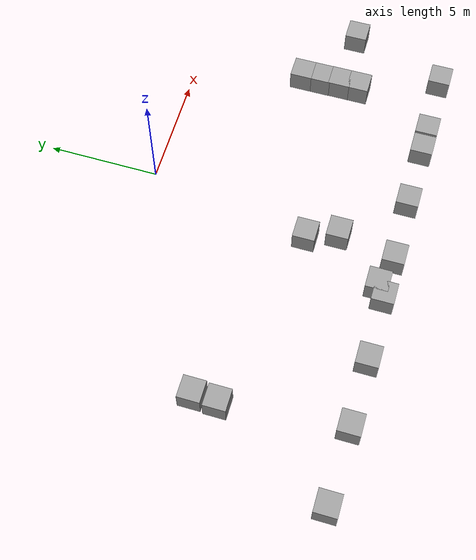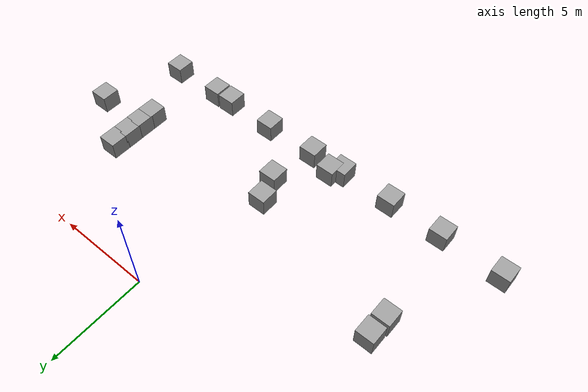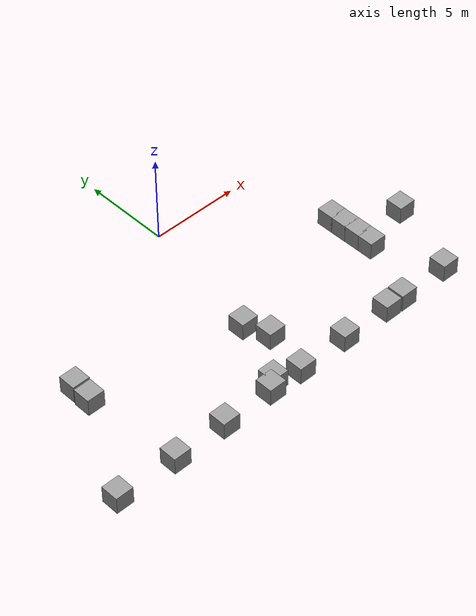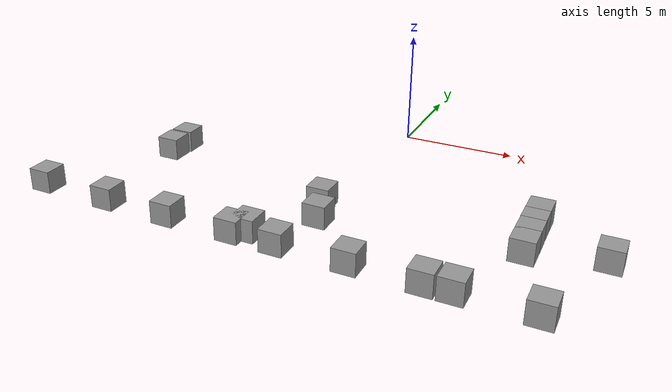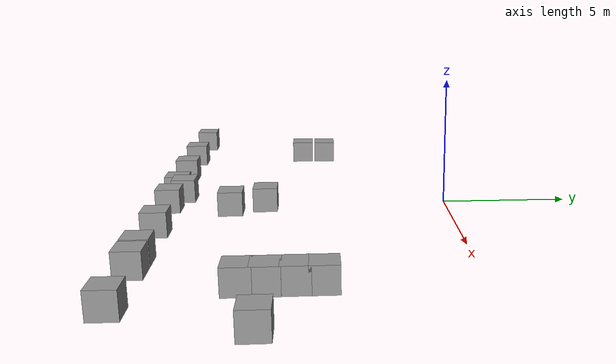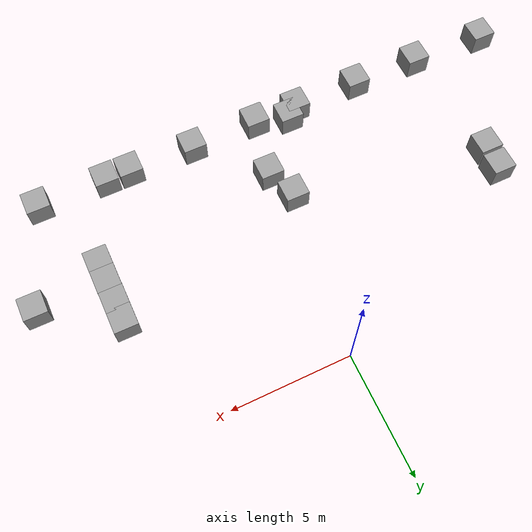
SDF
<sdf version="1.7">
 <model name="21">
  <link name="link_20">
   <inertial>
    <mass>1</mass>
    <inertia>
     <ixx>0.166667</ixx>
     <ixy>0</ixy>
     <ixz>0</ixz>
     <iyy>0.166667</iyy>
     <iyz>0</iyz>
     <izz>0.166667</izz>
    </inertia>
   </inertial>
   <pose>-9.6054 -4.79794 0 0 -0 0</pose>
   <visual name="visual">
    <geometry><box><size>1 1 1</size></box></geometry>
    <material>
     <lighting>1</lighting>
     <script><uri>file://media/materials/scripts/gazebo.material</uri><name>Gazebo/Grey</name></script>
     <shader type="pixel"/>
    </material>
   </visual>
   <collision name="collision">
    <geometry><box><size>1 1 1</size></box></geometry>
    <surface>
     <friction>
      <ode><mu>1</mu><mu2>1</mu2><fdir1>0 0 0</fdir1><slip1>0</slip1><slip2>0</slip2></ode>
      <torsional>
       <coefficient>1</coefficient>
       <patch_radius>0</patch_radius>
       <surface_radius>0</surface_radius>
       <use_patch_radius>1</use_patch_radius>
       <ode><slip>0</slip></ode>
      </torsional>
     </friction>
     <bounce><restitution_coefficient>0</restitution_coefficient><threshold>1e+06</threshold></bounce>
     <contact>
      <collide_without_contact>0</collide_without_contact>
      <collide_without_contact_bitmask>1</collide_without_contact_bitmask>
      <collide_bitmask>1</collide_bitmask>
      <ode>
       <soft_cfm>0</soft_cfm>
       <soft_erp>0.2</soft_erp>
       <kp>1e+13</kp>
       <kd>1</kd>
       <max_vel>0.01</max_vel>
       <min_depth>0</min_depth>
      </ode>
      <bullet>
       <split_impulse>1</split_impulse>
       <split_impulse_penetration_threshold>-0.01</split_impulse_penetration_threshold>
       <soft_cfm>0</soft_cfm>
       <soft_erp>0.2</soft_erp>
       <kp>1e+13</kp>
       <kd>1</kd>
      </bullet>
     </contact>
    </surface>
   </collision>
  </link>
  <link name="link_21">
   <inertial>
    <mass>1</mass>
    <inertia>
     <ixx>0.166667</ixx>
     <ixy>0</ixy>
     <ixz>0</ixz>
     <iyy>0.166667</iyy>
     <iyz>0</iyz>
     <izz>0.166667</izz>
    </inertia>
   </inertial>
   <pose>-9.65502 -5.90562 0 0 -0 0</pose>
   <visual name="visual">
    <geometry><box><size>1 1 1</size></box></geometry>
    <material>
     <lighting>1</lighting>
     <script><uri>file://media/materials/scripts/gazebo.material</uri><name>Gazebo/Grey</name></script>
     <shader type="pixel"/>
    </material>
   </visual>
   <collision name="collision">
    <geometry><box><size>1 1 1</size></box></geometry>
    <surface>
     <friction>
      <ode><mu>1</mu><mu2>1</mu2><fdir1>0 0 0</fdir1><slip1>0</slip1><slip2>0</slip2></ode>
      <torsional>
       <coefficient>1</coefficient>
       <patch_radius>0</patch_radius>
       <surface_radius>0</surface_radius>
       <use_patch_radius>1</use_patch_radius>
       <ode><slip>0</slip></ode>
      </torsional>
     </friction>
     <bounce><restitution_coefficient>0</restitution_coefficient><threshold>1e+06</threshold></bounce>
     <contact>
      <collide_without_contact>0</collide_without_contact>
      <collide_without_contact_bitmask>1</collide_without_contact_bitmask>
      <collide_bitmask>1</collide_bitmask>
      <ode>
       <soft_cfm>0</soft_cfm>
       <soft_erp>0.2</soft_erp>
       <kp>1e+13</kp>
       <kd>1</kd>
       <max_vel>0.01</max_vel>
       <min_depth>0</min_depth>
      </ode>
      <bullet>
       <split_impulse>1</split_impulse>
       <split_impulse_penetration_threshold>-0.01</split_impulse_penetration_threshold>
       <soft_cfm>0</soft_cfm>
       <soft_erp>0.2</soft_erp>
       <kp>1e+13</kp>
       <kd>1</kd>
      </bullet>
     </contact>
    </surface>
   </collision>
  </link>
  <link name="link_22">
   <inertial>
    <mass>1</mass>
    <inertia>
     <ixx>0.166667</ixx>
     <ixy>0</ixy>
     <ixz>0</ixz>
     <iyy>0.166667</iyy>
     <iyz>0</iyz>
     <izz>0.166667</izz>
    </inertia>
   </inertial>
   <pose>-12.5644 -11.2451 0 0 -0 0</pose>
   <visual name="visual">
    <geometry><box><size>1 1 1</size></box></geometry>
    <material>
     <lighting>1</lighting>
     <script><uri>file://media/materials/scripts/gazebo.material</uri><name>Gazebo/Grey</name></script>
     <shader type="pixel"/>
    </material>
   </visual>
   <collision name="collision">
    <geometry><box><size>1 1 1</size></box></geometry>
    <surface>
     <friction>
      <ode><mu>1</mu><mu2>1</mu2><fdir1>0 0 0</fdir1><slip1>0</slip1><slip2>0</slip2></ode>
      <torsional>
       <coefficient>1</coefficient>
       <patch_radius>0</patch_radius>
       <surface_radius>0</surface_radius>
       <use_patch_radius>1</use_patch_radius>
       <ode><slip>0</slip></ode>
      </torsional>
     </friction>
     <bounce><restitution_coefficient>0</restitution_coefficient><threshold>1e+06</threshold></bounce>
     <contact>
      <collide_without_contact>0</collide_without_contact>
      <collide_without_contact_bitmask>1</collide_without_contact_bitmask>
      <collide_bitmask>1</collide_bitmask>
      <ode>
       <soft_cfm>0</soft_cfm>
       <soft_erp>0.2</soft_erp>
       <kp>1e+13</kp>
       <kd>1</kd>
       <max_vel>0.01</max_vel>
       <min_depth>0</min_depth>
      </ode>
      <bullet>
       <split_impulse>1</split_impulse>
       <split_impulse_penetration_threshold>-0.01</split_impulse_penetration_threshold>
       <soft_cfm>0</soft_cfm>
       <soft_erp>0.2</soft_erp>
       <kp>1e+13</kp>
       <kd>1</kd>
      </bullet>
     </contact>
    </surface>
   </collision>
  </link>
  <link name="link_24">
   <inertial>
    <mass>1</mass>
    <inertia>
     <ixx>0.166667</ixx>
     <ixy>0</ixy>
     <ixz>0</ixz>
     <iyy>0.166667</iyy>
     <iyz>0</iyz>
     <izz>0.166667</izz>
    </inertia>
   </inertial>
   <pose>-6.11914 -11.3527 0 0 -0 0</pose>
   <visual name="visual">
    <geometry><box><size>1 1 1</size></box></geometry>
    <material>
     <lighting>1</lighting>
     <script><uri>file://media/materials/scripts/gazebo.material</uri><name>Gazebo/Grey</name></script>
     <shader type="pixel"/>
    </material>
   </visual>
   <collision name="collision">
    <geometry><box><size>1 1 1</size></box></geometry>
    <surface>
     <friction>
      <ode><mu>1</mu><mu2>1</mu2><fdir1>0 0 0</fdir1><slip1>0</slip1><slip2>0</slip2></ode>
      <torsional>
       <coefficient>1</coefficient>
       <patch_radius>0</patch_radius>
       <surface_radius>0</surface_radius>
       <use_patch_radius>1</use_patch_radius>
       <ode><slip>0</slip></ode>
      </torsional>
     </friction>
     <bounce><restitution_coefficient>0</restitution_coefficient><threshold>1e+06</threshold></bounce>
     <contact>
      <collide_without_contact>0</collide_without_contact>
      <collide_without_contact_bitmask>1</collide_without_contact_bitmask>
      <collide_bitmask>1</collide_bitmask>
      <ode>
       <soft_cfm>0</soft_cfm>
       <soft_erp>0.2</soft_erp>
       <kp>1e+13</kp>
       <kd>1</kd>
       <max_vel>0.01</max_vel>
       <min_depth>0</min_depth>
      </ode>
      <bullet>
       <split_impulse>1</split_impulse>
       <split_impulse_penetration_threshold>-0.01</split_impulse_penetration_threshold>
       <soft_cfm>0</soft_cfm>
       <soft_erp>0.2</soft_erp>
       <kp>1e+13</kp>
       <kd>1</kd>
      </bullet>
     </contact>
    </surface>
   </collision>
  </link>
  <link name="link_25">
   <inertial>
    <mass>1</mass>
    <inertia>
     <ixx>0.166667</ixx>
     <ixy>0</ixy>
     <ixz>0</ixz>
     <iyy>0.166667</iyy>
     <iyz>0</iyz>
     <izz>0.166667</izz>
    </inertia>
   </inertial>
   <pose>-9.16095 -11.3362 0 0 -0 0</pose>
   <visual name="visual">
    <geometry><box><size>1 1 1</size></box></geometry>
    <material>
     <lighting>1</lighting>
     <script><uri>file://media/materials/scripts/gazebo.material</uri><name>Gazebo/Grey</name></script>
     <shader type="pixel"/>
    </material>
   </visual>
   <collision name="collision">
    <geometry><box><size>1 1 1</size></box></geometry>
    <surface>
     <friction>
      <ode><mu>1</mu><mu2>1</mu2><fdir1>0 0 0</fdir1><slip1>0</slip1><slip2>0</slip2></ode>
      <torsional>
       <coefficient>1</coefficient>
       <patch_radius>0</patch_radius>
       <surface_radius>0</surface_radius>
       <use_patch_radius>1</use_patch_radius>
       <ode><slip>0</slip></ode>
      </torsional>
     </friction>
     <bounce><restitution_coefficient>0</restitution_coefficient><threshold>1e+06</threshold></bounce>
     <contact>
      <collide_without_contact>0</collide_without_contact>
      <collide_without_contact_bitmask>1</collide_without_contact_bitmask>
      <collide_bitmask>1</collide_bitmask>
      <ode>
       <soft_cfm>0</soft_cfm>
       <soft_erp>0.2</soft_erp>
       <kp>1e+13</kp>
       <kd>1</kd>
       <max_vel>0.01</max_vel>
       <min_depth>0</min_depth>
      </ode>
      <bullet>
       <split_impulse>1</split_impulse>
       <split_impulse_penetration_threshold>-0.01</split_impulse_penetration_threshold>
       <soft_cfm>0</soft_cfm>
       <soft_erp>0.2</soft_erp>
       <kp>1e+13</kp>
       <kd>1</kd>
      </bullet>
     </contact>
    </surface>
   </collision>
  </link>
  <link name="link_26">
   <inertial>
    <mass>1</mass>
    <inertia>
     <ixx>0.166667</ixx>
     <ixy>0</ixy>
     <ixz>0</ixz>
     <iyy>0.166667</iyy>
     <iyz>0</iyz>
     <izz>0.166667</izz>
    </inertia>
   </inertial>
   <pose>-1.11812 -7.33722 0 0 -0 0</pose>
   <visual name="visual">
    <geometry><box><size>1 1 1</size></box></geometry>
    <material>
     <lighting>1</lighting>
     <script><uri>file://media/materials/scripts/gazebo.material</uri><name>Gazebo/Grey</name></script>
     <shader type="pixel"/>
    </material>
   </visual>
   <collision name="collision">
    <geometry><box><size>1 1 1</size></box></geometry>
    <surface>
     <friction>
      <ode><mu>1</mu><mu2>1</mu2><fdir1>0 0 0</fdir1><slip1>0</slip1><slip2>0</slip2></ode>
      <torsional>
       <coefficient>1</coefficient>
       <patch_radius>0</patch_radius>
       <surface_radius>0</surface_radius>
       <use_patch_radius>1</use_patch_radius>
       <ode><slip>0</slip></ode>
      </torsional>
     </friction>
     <bounce><restitution_coefficient>0</restitution_coefficient><threshold>1e+06</threshold></bounce>
     <contact>
      <collide_without_contact>0</collide_without_contact>
      <collide_without_contact_bitmask>1</collide_without_contact_bitmask>
      <collide_bitmask>1</collide_bitmask>
      <ode>
       <soft_cfm>0</soft_cfm>
       <soft_erp>0.2</soft_erp>
       <kp>1e+13</kp>
       <kd>1</kd>
       <max_vel>0.01</max_vel>
       <min_depth>0</min_depth>
      </ode>
      <bullet>
       <split_impulse>1</split_impulse>
       <split_impulse_penetration_threshold>-0.01</split_impulse_penetration_threshold>
       <soft_cfm>0</soft_cfm>
       <soft_erp>0.2</soft_erp>
       <kp>1e+13</kp>
       <kd>1</kd>
      </bullet>
     </contact>
    </surface>
   </collision>
  </link>
  <link name="link_27">
   <inertial>
    <mass>1</mass>
    <inertia>
     <ixx>0.166667</ixx>
     <ixy>0</ixy>
     <ixz>0</ixz>
     <iyy>0.166667</iyy>
     <iyz>0</iyz>
     <izz>0.166667</izz>
    </inertia>
   </inertial>
   <pose>-0.622145 -8.72573 0 0 -0 0</pose>
   <visual name="visual">
    <geometry><box><size>1 1 1</size></box></geometry>
    <material>
     <lighting>1</lighting>
     <script><uri>file://media/materials/scripts/gazebo.material</uri><name>Gazebo/Grey</name></script>
     <shader type="pixel"/>
    </material>
   </visual>
   <collision name="collision">
    <geometry><box><size>1 1 1</size></box></geometry>
    <surface>
     <friction>
      <ode><mu>1</mu><mu2>1</mu2><fdir1>0 0 0</fdir1><slip1>0</slip1><slip2>0</slip2></ode>
      <torsional>
       <coefficient>1</coefficient>
       <patch_radius>0</patch_radius>
       <surface_radius>0</surface_radius>
       <use_patch_radius>1</use_patch_radius>
       <ode><slip>0</slip></ode>
      </torsional>
     </friction>
     <bounce><restitution_coefficient>0</restitution_coefficient><threshold>1e+06</threshold></bounce>
     <contact>
      <collide_without_contact>0</collide_without_contact>
      <collide_without_contact_bitmask>1</collide_without_contact_bitmask>
      <collide_bitmask>1</collide_bitmask>
      <ode>
       <soft_cfm>0</soft_cfm>
       <soft_erp>0.2</soft_erp>
       <kp>1e+13</kp>
       <kd>1</kd>
       <max_vel>0.01</max_vel>
       <min_depth>0</min_depth>
      </ode>
      <bullet>
       <split_impulse>1</split_impulse>
       <split_impulse_penetration_threshold>-0.01</split_impulse_penetration_threshold>
       <soft_cfm>0</soft_cfm>
       <soft_erp>0.2</soft_erp>
       <kp>1e+13</kp>
       <kd>1</kd>
      </bullet>
     </contact>
    </surface>
   </collision>
  </link>
  <link name="link_28">
   <inertial>
    <mass>1</mass>
    <inertia>
     <ixx>0.166667</ixx>
     <ixy>0</ixy>
     <ixz>0</ixz>
     <iyy>0.166667</iyy>
     <iyz>0</iyz>
     <izz>0.166667</izz>
    </inertia>
   </inertial>
   <pose>-3.11836 -11.3212 0 0 -0 0</pose>
   <visual name="visual">
    <geometry><box><size>1 1 1</size></box></geometry>
    <material>
     <lighting>1</lighting>
     <script><uri>file://media/materials/scripts/gazebo.material</uri><name>Gazebo/Grey</name></script>
     <shader type="pixel"/>
    </material>
   </visual>
   <collision name="collision">
    <geometry><box><size>1 1 1</size></box></geometry>
    <surface>
     <friction>
      <ode><mu>1</mu><mu2>1</mu2><fdir1>0 0 0</fdir1><slip1>0</slip1><slip2>0</slip2></ode>
      <torsional>
       <coefficient>1</coefficient>
       <patch_radius>0</patch_radius>
       <surface_radius>0</surface_radius>
       <use_patch_radius>1</use_patch_radius>
       <ode><slip>0</slip></ode>
      </torsional>
     </friction>
     <bounce><restitution_coefficient>0</restitution_coefficient><threshold>1e+06</threshold></bounce>
     <contact>
      <collide_without_contact>0</collide_without_contact>
      <collide_without_contact_bitmask>1</collide_without_contact_bitmask>
      <collide_bitmask>1</collide_bitmask>
      <ode>
       <soft_cfm>0</soft_cfm>
       <soft_erp>0.2</soft_erp>
       <kp>1e+13</kp>
       <kd>1</kd>
       <max_vel>0.01</max_vel>
       <min_depth>0</min_depth>
      </ode>
      <bullet>
       <split_impulse>1</split_impulse>
       <split_impulse_penetration_threshold>-0.01</split_impulse_penetration_threshold>
       <soft_cfm>0</soft_cfm>
       <soft_erp>0.2</soft_erp>
       <kp>1e+13</kp>
       <kd>1</kd>
      </bullet>
     </contact>
    </surface>
   </collision>
  </link>
  <link name="link_29">
   <inertial>
    <mass>1</mass>
    <inertia>
     <ixx>0.166667</ixx>
     <ixy>0</ixy>
     <ixz>0</ixz>
     <iyy>0.166667</iyy>
     <iyz>0</iyz>
     <izz>0.166667</izz>
    </inertia>
   </inertial>
   <pose>-2.6059 -10.9411 0 0 -0 0</pose>
   <visual name="visual">
    <geometry><box><size>1 1 1</size></box></geometry>
    <material>
     <lighting>1</lighting>
     <script><uri>file://media/materials/scripts/gazebo.material</uri><name>Gazebo/Grey</name></script>
     <shader type="pixel"/>
    </material>
   </visual>
   <collision name="collision">
    <geometry><box><size>1 1 1</size></box></geometry>
    <surface>
     <friction>
      <ode><mu>1</mu><mu2>1</mu2><fdir1>0 0 0</fdir1><slip1>0</slip1><slip2>0</slip2></ode>
      <torsional>
       <coefficient>1</coefficient>
       <patch_radius>0</patch_radius>
       <surface_radius>0</surface_radius>
       <use_patch_radius>1</use_patch_radius>
       <ode><slip>0</slip></ode>
      </torsional>
     </friction>
     <bounce><restitution_coefficient>0</restitution_coefficient><threshold>1e+06</threshold></bounce>
     <contact>
      <collide_without_contact>0</collide_without_contact>
      <collide_without_contact_bitmask>1</collide_without_contact_bitmask>
      <collide_bitmask>1</collide_bitmask>
      <ode>
       <soft_cfm>0</soft_cfm>
       <soft_erp>0.2</soft_erp>
       <kp>1e+13</kp>
       <kd>1</kd>
       <max_vel>0.01</max_vel>
       <min_depth>0</min_depth>
      </ode>
      <bullet>
       <split_impulse>1</split_impulse>
       <split_impulse_penetration_threshold>-0.01</split_impulse_penetration_threshold>
       <soft_cfm>0</soft_cfm>
       <soft_erp>0.2</soft_erp>
       <kp>1e+13</kp>
       <kd>1</kd>
      </bullet>
     </contact>
    </surface>
   </collision>
  </link>
  <link name="link_30">
   <inertial>
    <mass>1</mass>
    <inertia>
     <ixx>0.166667</ixx>
     <ixy>0</ixy>
     <ixz>0</ixz>
     <iyy>0.166667</iyy>
     <iyz>0</iyz>
     <izz>0.166667</izz>
    </inertia>
   </inertial>
   <pose>-1.15114 -11.3377 0 0 -0 0</pose>
   <visual name="visual">
    <geometry><box><size>1 1 1</size></box></geometry>
    <material>
     <lighting>1</lighting>
     <script><uri>file://media/materials/scripts/gazebo.material</uri><name>Gazebo/Grey</name></script>
     <shader type="pixel"/>
    </material>
   </visual>
   <collision name="collision">
    <geometry><box><size>1 1 1</size></box></geometry>
    <surface>
     <friction>
      <ode><mu>1</mu><mu2>1</mu2><fdir1>0 0 0</fdir1><slip1>0</slip1><slip2>0</slip2></ode>
      <torsional>
       <coefficient>1</coefficient>
       <patch_radius>0</patch_radius>
       <surface_radius>0</surface_radius>
       <use_patch_radius>1</use_patch_radius>
       <ode><slip>0</slip></ode>
      </torsional>
     </friction>
     <bounce><restitution_coefficient>0</restitution_coefficient><threshold>1e+06</threshold></bounce>
     <contact>
      <collide_without_contact>0</collide_without_contact>
      <collide_without_contact_bitmask>1</collide_without_contact_bitmask>
      <collide_bitmask>1</collide_bitmask>
      <ode>
       <soft_cfm>0</soft_cfm>
       <soft_erp>0.2</soft_erp>
       <kp>1e+13</kp>
       <kd>1</kd>
       <max_vel>0.01</max_vel>
       <min_depth>0</min_depth>
      </ode>
      <bullet>
       <split_impulse>1</split_impulse>
       <split_impulse_penetration_threshold>-0.01</split_impulse_penetration_threshold>
       <soft_cfm>0</soft_cfm>
       <soft_erp>0.2</soft_erp>
       <kp>1e+13</kp>
       <kd>1</kd>
      </bullet>
     </contact>
    </surface>
   </collision>
  </link>
  <link name="link_31">
   <inertial>
    <mass>1</mass>
    <inertia>
     <ixx>0.166667</ixx>
     <ixy>0</ixy>
     <ixz>0</ixz>
     <iyy>0.166667</iyy>
     <iyz>0</iyz>
     <izz>0.166667</izz>
    </inertia>
   </inertial>
   <pose>1.83997 -11.3011 0 0 -0 0</pose>
   <visual name="visual">
    <geometry><box><size>1 1 1</size></box></geometry>
    <material>
     <lighting>1</lighting>
     <script><uri>file://media/materials/scripts/gazebo.material</uri><name>Gazebo/Grey</name></script>
     <shader type="pixel"/>
    </material>
   </visual>
   <collision name="collision">
    <geometry><box><size>1 1 1</size></box></geometry>
    <surface>
     <friction>
      <ode><mu>1</mu><mu2>1</mu2><fdir1>0 0 0</fdir1><slip1>0</slip1><slip2>0</slip2></ode>
      <torsional>
       <coefficient>1</coefficient>
       <patch_radius>0</patch_radius>
       <surface_radius>0</surface_radius>
       <use_patch_radius>1</use_patch_radius>
       <ode><slip>0</slip></ode>
      </torsional>
     </friction>
     <bounce><restitution_coefficient>0</restitution_coefficient><threshold>1e+06</threshold></bounce>
     <contact>
      <collide_without_contact>0</collide_without_contact>
      <collide_without_contact_bitmask>1</collide_without_contact_bitmask>
      <collide_bitmask>1</collide_bitmask>
      <ode>
       <soft_cfm>0</soft_cfm>
       <soft_erp>0.2</soft_erp>
       <kp>1e+13</kp>
       <kd>1</kd>
       <max_vel>0.01</max_vel>
       <min_depth>0</min_depth>
      </ode>
      <bullet>
       <split_impulse>1</split_impulse>
       <split_impulse_penetration_threshold>-0.01</split_impulse_penetration_threshold>
       <soft_cfm>0</soft_cfm>
       <soft_erp>0.2</soft_erp>
       <kp>1e+13</kp>
       <kd>1</kd>
      </bullet>
     </contact>
    </surface>
   </collision>
  </link>
  <link name="link_32">
   <inertial>
    <mass>1</mass>
    <inertia>
     <ixx>0.166667</ixx>
     <ixy>0</ixy>
     <ixz>0</ixz>
     <iyy>0.166667</iyy>
     <iyz>0</iyz>
     <izz>0.166667</izz>
    </inertia>
   </inertial>
   <pose>5.82411 -11.3316 0 0 -0 0</pose>
   <visual name="visual">
    <geometry><box><size>1 1 1</size></box></geometry>
    <material>
     <lighting>1</lighting>
     <script><uri>file://media/materials/scripts/gazebo.material</uri><name>Gazebo/Grey</name></script>
     <shader type="pixel"/>
    </material>
   </visual>
   <collision name="collision">
    <geometry><box><size>1 1 1</size></box></geometry>
    <surface>
     <friction>
      <ode><mu>1</mu><mu2>1</mu2><fdir1>0 0 0</fdir1><slip1>0</slip1><slip2>0</slip2></ode>
      <torsional>
       <coefficient>1</coefficient>
       <patch_radius>0</patch_radius>
       <surface_radius>0</surface_radius>
       <use_patch_radius>1</use_patch_radius>
       <ode><slip>0</slip></ode>
      </torsional>
     </friction>
     <bounce><restitution_coefficient>0</restitution_coefficient><threshold>1e+06</threshold></bounce>
     <contact>
      <collide_without_contact>0</collide_without_contact>
      <collide_without_contact_bitmask>1</collide_without_contact_bitmask>
      <collide_bitmask>1</collide_bitmask>
      <ode>
       <soft_cfm>0</soft_cfm>
       <soft_erp>0.2</soft_erp>
       <kp>1e+13</kp>
       <kd>1</kd>
       <max_vel>0.01</max_vel>
       <min_depth>0</min_depth>
      </ode>
      <bullet>
       <split_impulse>1</split_impulse>
       <split_impulse_penetration_threshold>-0.01</split_impulse_penetration_threshold>
       <soft_cfm>0</soft_cfm>
       <soft_erp>0.2</soft_erp>
       <kp>1e+13</kp>
       <kd>1</kd>
      </bullet>
     </contact>
    </surface>
   </collision>
  </link>
  <link name="link_33">
   <inertial>
    <mass>1</mass>
    <inertia>
     <ixx>0.166667</ixx>
     <ixy>0</ixy>
     <ixz>0</ixz>
     <iyy>0.166667</iyy>
     <iyz>0</iyz>
     <izz>0.166667</izz>
    </inertia>
   </inertial>
   <pose>4.73301 -11.3316 0 0 -0 0</pose>
   <visual name="visual">
    <geometry><box><size>1 1 1</size></box></geometry>
    <material>
     <lighting>1</lighting>
     <script><uri>file://media/materials/scripts/gazebo.material</uri><name>Gazebo/Grey</name></script>
     <shader type="pixel"/>
    </material>
   </visual>
   <collision name="collision">
    <geometry><box><size>1 1 1</size></box></geometry>
    <surface>
     <friction>
      <ode><mu>1</mu><mu2>1</mu2><fdir1>0 0 0</fdir1><slip1>0</slip1><slip2>0</slip2></ode>
      <torsional>
       <coefficient>1</coefficient>
       <patch_radius>0</patch_radius>
       <surface_radius>0</surface_radius>
       <use_patch_radius>1</use_patch_radius>
       <ode><slip>0</slip></ode>
      </torsional>
     </friction>
     <bounce><restitution_coefficient>0</restitution_coefficient><threshold>1e+06</threshold></bounce>
     <contact>
      <collide_without_contact>0</collide_without_contact>
      <collide_without_contact_bitmask>1</collide_without_contact_bitmask>
      <collide_bitmask>1</collide_bitmask>
      <ode>
       <soft_cfm>0</soft_cfm>
       <soft_erp>0.2</soft_erp>
       <kp>1e+13</kp>
       <kd>1</kd>
       <max_vel>0.01</max_vel>
       <min_depth>0</min_depth>
      </ode>
      <bullet>
       <split_impulse>1</split_impulse>
       <split_impulse_penetration_threshold>-0.01</split_impulse_penetration_threshold>
       <soft_cfm>0</soft_cfm>
       <soft_erp>0.2</soft_erp>
       <kp>1e+13</kp>
       <kd>1</kd>
      </bullet>
     </contact>
    </surface>
   </collision>
  </link>
  <link name="link_34">
   <inertial>
    <mass>1</mass>
    <inertia>
     <ixx>0.166667</ixx>
     <ixy>0</ixy>
     <ixz>0</ixz>
     <iyy>0.166667</iyy>
     <iyz>0</iyz>
     <izz>0.166667</izz>
    </inertia>
   </inertial>
   <pose>7.38172 -7.70038 0 0 -0 0</pose>
   <visual name="visual">
    <geometry><box><size>1 1 1</size></box></geometry>
    <material>
     <lighting>1</lighting>
     <script><uri>file://media/materials/scripts/gazebo.material</uri><name>Gazebo/Grey</name></script>
     <shader type="pixel"/>
    </material>
   </visual>
   <collision name="collision">
    <geometry><box><size>1 1 1</size></box></geometry>
    <surface>
     <friction>
      <ode><mu>1</mu><mu2>1</mu2><fdir1>0 0 0</fdir1><slip1>0</slip1><slip2>0</slip2></ode>
      <torsional>
       <coefficient>1</coefficient>
       <patch_radius>0</patch_radius>
       <surface_radius>0</surface_radius>
       <use_patch_radius>1</use_patch_radius>
       <ode><slip>0</slip></ode>
      </torsional>
     </friction>
     <bounce><restitution_coefficient>0</restitution_coefficient><threshold>1e+06</threshold></bounce>
     <contact>
      <collide_without_contact>0</collide_without_contact>
      <collide_without_contact_bitmask>1</collide_without_contact_bitmask>
      <collide_bitmask>1</collide_bitmask>
      <ode>
       <soft_cfm>0</soft_cfm>
       <soft_erp>0.2</soft_erp>
       <kp>1e+13</kp>
       <kd>1</kd>
       <max_vel>0.01</max_vel>
       <min_depth>0</min_depth>
      </ode>
      <bullet>
       <split_impulse>1</split_impulse>
       <split_impulse_penetration_threshold>-0.01</split_impulse_penetration_threshold>
       <soft_cfm>0</soft_cfm>
       <soft_erp>0.2</soft_erp>
       <kp>1e+13</kp>
       <kd>1</kd>
      </bullet>
     </contact>
    </surface>
   </collision>
  </link>
  <link name="link_35">
   <inertial>
    <mass>1</mass>
    <inertia>
     <ixx>0.166667</ixx>
     <ixy>0</ixy>
     <ixz>0</ixz>
     <iyy>0.166667</iyy>
     <iyz>0</iyz>
     <izz>0.166667</izz>
    </inertia>
   </inertial>
   <pose>8.82536 -11.3245 0 0 -0 0</pose>
   <visual name="visual">
    <geometry><box><size>1 1 1</size></box></geometry>
    <material>
     <lighting>1</lighting>
     <script><uri>file://media/materials/scripts/gazebo.material</uri><name>Gazebo/Grey</name></script>
     <shader type="pixel"/>
    </material>
   </visual>
   <collision name="collision">
    <geometry><box><size>1 1 1</size></box></geometry>
    <surface>
     <friction>
      <ode><mu>1</mu><mu2>1</mu2><fdir1>0 0 0</fdir1><slip1>0</slip1><slip2>0</slip2></ode>
      <torsional>
       <coefficient>1</coefficient>
       <patch_radius>0</patch_radius>
       <surface_radius>0</surface_radius>
       <use_patch_radius>1</use_patch_radius>
       <ode><slip>0</slip></ode>
      </torsional>
     </friction>
     <bounce><restitution_coefficient>0</restitution_coefficient><threshold>1e+06</threshold></bounce>
     <contact>
      <collide_without_contact>0</collide_without_contact>
      <collide_without_contact_bitmask>1</collide_without_contact_bitmask>
      <collide_bitmask>1</collide_bitmask>
      <ode>
       <soft_cfm>0</soft_cfm>
       <soft_erp>0.2</soft_erp>
       <kp>1e+13</kp>
       <kd>1</kd>
       <max_vel>0.01</max_vel>
       <min_depth>0</min_depth>
      </ode>
      <bullet>
       <split_impulse>1</split_impulse>
       <split_impulse_penetration_threshold>-0.01</split_impulse_penetration_threshold>
       <soft_cfm>0</soft_cfm>
       <soft_erp>0.2</soft_erp>
       <kp>1e+13</kp>
       <kd>1</kd>
      </bullet>
     </contact>
    </surface>
   </collision>
  </link>
  <link name="link_36">
   <inertial>
    <mass>1</mass>
    <inertia>
     <ixx>0.166667</ixx>
     <ixy>0</ixy>
     <ixz>0</ixz>
     <iyy>0.166667</iyy>
     <iyz>0</iyz>
     <izz>0.166667</izz>
    </inertia>
   </inertial>
   <pose>10.3646 -6.91798 0 0 -0 0</pose>
   <visual name="visual">
    <geometry><box><size>1 1 1</size></box></geometry>
    <material>
     <lighting>1</lighting>
     <script><uri>file://media/materials/scripts/gazebo.material</uri><name>Gazebo/Grey</name></script>
     <shader type="pixel"/>
    </material>
   </visual>
   <collision name="collision">
    <geometry><box><size>1 1 1</size></box></geometry>
    <surface>
     <friction>
      <ode><mu>1</mu><mu2>1</mu2><fdir1>0 0 0</fdir1><slip1>0</slip1><slip2>0</slip2></ode>
      <torsional>
       <coefficient>1</coefficient>
       <patch_radius>0</patch_radius>
       <surface_radius>0</surface_radius>
       <use_patch_radius>1</use_patch_radius>
       <ode><slip>0</slip></ode>
      </torsional>
     </friction>
     <bounce><restitution_coefficient>0</restitution_coefficient><threshold>1e+06</threshold></bounce>
     <contact>
      <collide_without_contact>0</collide_without_contact>
      <collide_without_contact_bitmask>1</collide_without_contact_bitmask>
      <collide_bitmask>1</collide_bitmask>
      <ode>
       <soft_cfm>0</soft_cfm>
       <soft_erp>0.2</soft_erp>
       <kp>1e+13</kp>
       <kd>1</kd>
       <max_vel>0.01</max_vel>
       <min_depth>0</min_depth>
      </ode>
      <bullet>
       <split_impulse>1</split_impulse>
       <split_impulse_penetration_threshold>-0.01</split_impulse_penetration_threshold>
       <soft_cfm>0</soft_cfm>
       <soft_erp>0.2</soft_erp>
       <kp>1e+13</kp>
       <kd>1</kd>
      </bullet>
     </contact>
    </surface>
   </collision>
  </link>
  <link name="link_39">
   <inertial>
    <mass>1</mass>
    <inertia>
     <ixx>0.166667</ixx>
     <ixy>0</ixy>
     <ixz>0</ixz>
     <iyy>0.166667</iyy>
     <iyz>0</iyz>
     <izz>0.166667</izz>
    </inertia>
   </inertial>
   <pose>7.3726 -4.96382 0 0 -0 0</pose>
   <visual name="visual">
    <geometry><box><size>1 1 1</size></box></geometry>
    <material>
     <lighting>1</lighting>
     <script><uri>file://media/materials/scripts/gazebo.material</uri><name>Gazebo/Grey</name></script>
     <shader type="pixel"/>
    </material>
   </visual>
   <collision name="collision">
    <geometry><box><size>1 1 1</size></box></geometry>
    <surface>
     <friction>
      <ode><mu>1</mu><mu2>1</mu2><fdir1>0 0 0</fdir1><slip1>0</slip1><slip2>0</slip2></ode>
      <torsional>
       <coefficient>1</coefficient>
       <patch_radius>0</patch_radius>
       <surface_radius>0</surface_radius>
       <use_patch_radius>1</use_patch_radius>
       <ode><slip>0</slip></ode>
      </torsional>
     </friction>
     <bounce><restitution_coefficient>0</restitution_coefficient><threshold>1e+06</threshold></bounce>
     <contact>
      <collide_without_contact>0</collide_without_contact>
      <collide_without_contact_bitmask>1</collide_without_contact_bitmask>
      <collide_bitmask>1</collide_bitmask>
      <ode>
       <soft_cfm>0</soft_cfm>
       <soft_erp>0.2</soft_erp>
       <kp>1e+13</kp>
       <kd>1</kd>
       <max_vel>0.01</max_vel>
       <min_depth>0</min_depth>
      </ode>
      <bullet>
       <split_impulse>1</split_impulse>
       <split_impulse_penetration_threshold>-0.01</split_impulse_penetration_threshold>
       <soft_cfm>0</soft_cfm>
       <soft_erp>0.2</soft_erp>
       <kp>1e+13</kp>
       <kd>1</kd>
      </bullet>
     </contact>
    </surface>
   </collision>
  </link>
  <link name="link_40">
   <inertial>
    <mass>1</mass>
    <inertia>
     <ixx>0.166667</ixx>
     <ixy>0</ixy>
     <ixz>0</ixz>
     <iyy>0.166667</iyy>
     <iyz>0</iyz>
     <izz>0.166667</izz>
    </inertia>
   </inertial>
   <pose>7.3726 -5.8667 0 0 -0 0</pose>
   <visual name="visual">
    <geometry><box><size>1 1 1</size></box></geometry>
    <material>
     <lighting>1</lighting>
     <script><uri>file://media/materials/scripts/gazebo.material</uri><name>Gazebo/Grey</name></script>
     <shader type="pixel"/>
    </material>
   </visual>
   <collision name="collision">
    <geometry><box><size>1 1 1</size></box></geometry>
    <surface>
     <friction>
      <ode><mu>1</mu><mu2>1</mu2><fdir1>0 0 0</fdir1><slip1>0</slip1><slip2>0</slip2></ode>
      <torsional>
       <coefficient>1</coefficient>
       <patch_radius>0</patch_radius>
       <surface_radius>0</surface_radius>
       <use_patch_radius>1</use_patch_radius>
       <ode><slip>0</slip></ode>
      </torsional>
     </friction>
     <bounce><restitution_coefficient>0</restitution_coefficient><threshold>1e+06</threshold></bounce>
     <contact>
      <collide_without_contact>0</collide_without_contact>
      <collide_without_contact_bitmask>1</collide_without_contact_bitmask>
      <collide_bitmask>1</collide_bitmask>
      <ode>
       <soft_cfm>0</soft_cfm>
       <soft_erp>0.2</soft_erp>
       <kp>1e+13</kp>
       <kd>1</kd>
       <max_vel>0.01</max_vel>
       <min_depth>0</min_depth>
      </ode>
      <bullet>
       <split_impulse>1</split_impulse>
       <split_impulse_penetration_threshold>-0.01</split_impulse_penetration_threshold>
       <soft_cfm>0</soft_cfm>
       <soft_erp>0.2</soft_erp>
       <kp>1e+13</kp>
       <kd>1</kd>
      </bullet>
     </contact>
    </surface>
   </collision>
  </link>
  <link name="link_41">
   <inertial>
    <mass>1</mass>
    <inertia>
     <ixx>0.166667</ixx>
     <ixy>0</ixy>
     <ixz>0</ixz>
     <iyy>0.166667</iyy>
     <iyz>0</iyz>
     <izz>0.166667</izz>
    </inertia>
   </inertial>
   <pose>7.38169 -6.80577 0 0 -0 0</pose>
   <visual name="visual">
    <geometry><box><size>1 1 1</size></box></geometry>
    <material>
     <lighting>1</lighting>
     <script><uri>file://media/materials/scripts/gazebo.material</uri><name>Gazebo/Grey</name></script>
     <shader type="pixel"/>
    </material>
   </visual>
   <collision name="collision">
    <geometry><box><size>1 1 1</size></box></geometry>
    <surface>
     <friction>
      <ode><mu>1</mu><mu2>1</mu2><fdir1>0 0 0</fdir1><slip1>0</slip1><slip2>0</slip2></ode>
      <torsional>
       <coefficient>1</coefficient>
       <patch_radius>0</patch_radius>
       <surface_radius>0</surface_radius>
       <use_patch_radius>1</use_patch_radius>
       <ode><slip>0</slip></ode>
      </torsional>
     </friction>
     <bounce><restitution_coefficient>0</restitution_coefficient><threshold>1e+06</threshold></bounce>
     <contact>
      <collide_without_contact>0</collide_without_contact>
      <collide_without_contact_bitmask>1</collide_without_contact_bitmask>
      <collide_bitmask>1</collide_bitmask>
      <ode>
       <soft_cfm>0</soft_cfm>
       <soft_erp>0.2</soft_erp>
       <kp>1e+13</kp>
       <kd>1</kd>
       <max_vel>0.01</max_vel>
       <min_depth>0</min_depth>
      </ode>
      <bullet>
       <split_impulse>1</split_impulse>
       <split_impulse_penetration_threshold>-0.01</split_impulse_penetration_threshold>
       <soft_cfm>0</soft_cfm>
       <soft_erp>0.2</soft_erp>
       <kp>1e+13</kp>
       <kd>1</kd>
      </bullet>
     </contact>
    </surface>
   </collision>
  </link>
  <static>0</static>
 </model>
</sdf>
